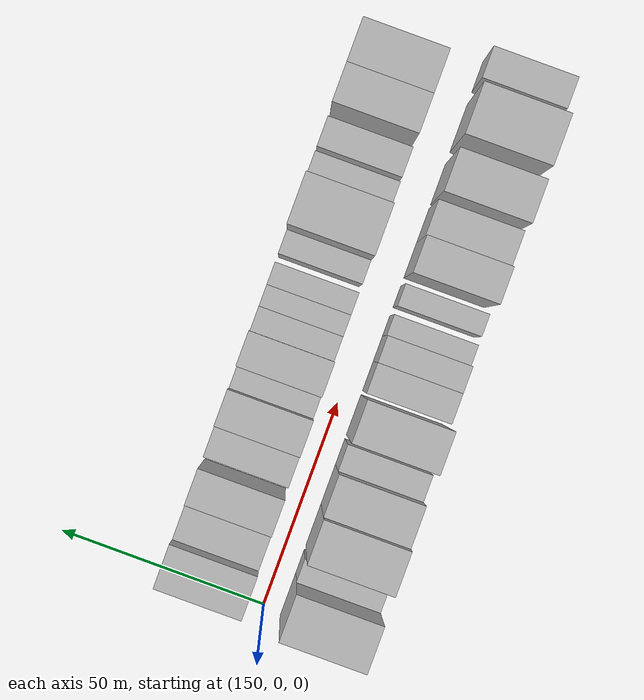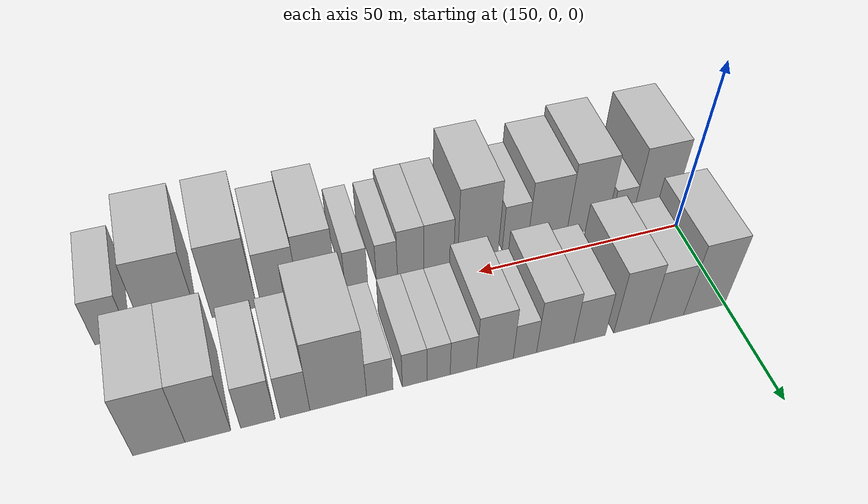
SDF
<sdf version="1.6">
 <world name="default">
  <model name="building_16">
   <static>1</static>
   <pose>155.3684 14.5000 0 0.000000 0.000000 1.570796</pose>
   <link name="link">
    <pose>0 0 12.00 0 0 0</pose>
    <collision name="collision"><geometry><box><size>20.0000 10.0553 24.0000</size></box></geometry></collision>
    <visual name="visual">
     <cast_shadows>0</cast_shadows>
     <geometry><box><size>20.0000 10.0553 24.0000</size></box></geometry>
     <material>
      <script>
       <uri>model://HANNAS_wall/materials/scripts</uri>
       <uri>model://HANNAS_wall/materials/textures</uri>
       <name>vrc/HANNAS_wall</name>
      </script>
     </material>
    </visual>
   </link>
  </model>
  <model name="building_17">
   <static>1</static>
   <pose>164.5696 14.5000 0 0.000000 0.000000 1.570796</pose>
   <link name="link">
    <pose>0 0 9.00 0 0 0</pose>
    <collision name="collision"><geometry><box><size>20.0000 8.3471 18.0000</size></box></geometry></collision>
    <visual name="visual">
     <cast_shadows>0</cast_shadows>
     <geometry><box><size>20.0000 8.3471 18.0000</size></box></geometry>
     <material>
      <script>
       <uri>model://HANNAS_wall/materials/scripts</uri>
       <uri>model://HANNAS_wall/materials/textures</uri>
       <name>vrc/HANNAS_wall</name>
      </script>
     </material>
    </visual>
   </link>
  </model>
  <model name="building_18">
   <static>1</static>
   <pose>172.9722 14.5000 0 0.000000 0.000000 1.570796</pose>
   <link name="link">
    <pose>0 0 10.50 0 0 0</pose>
    <collision name="collision"><geometry><box><size>20.0000 8.4581 21.0000</size></box></geometry></collision>
    <visual name="visual">
     <cast_shadows>0</cast_shadows>
     <geometry><box><size>20.0000 8.4581 21.0000</size></box></geometry>
     <material>
      <script>
       <uri>model://HANNAS_wall/materials/scripts</uri>
       <uri>model://HANNAS_wall/materials/textures</uri>
       <name>vrc/HANNAS_wall</name>
      </script>
     </material>
    </visual>
   </link>
  </model>
  <model name="building_19">
   <static>1</static>
   <pose>182.9234 14.5000 0 0.000000 0.000000 1.570796</pose>
   <link name="link">
    <pose>0 0 7.50 0 0 0</pose>
    <collision name="collision"><geometry><box><size>20.0000 7.4443 15.0000</size></box></geometry></collision>
    <visual name="visual">
     <cast_shadows>0</cast_shadows>
     <geometry><box><size>20.0000 7.4443 15.0000</size></box></geometry>
     <material>
      <script>
       <uri>model://HANNAS_wall/materials/scripts</uri>
       <uri>model://HANNAS_wall/materials/textures</uri>
       <name>vrc/HANNAS_wall</name>
      </script>
     </material>
    </visual>
   </link>
  </model>
  <model name="building_20">
   <static>1</static>
   <pose>190.9403 14.5000 0 0.000000 0.000000 1.570796</pose>
   <link name="link">
    <pose>0 0 9.00 0 0 0</pose>
    <collision name="collision"><geometry><box><size>20.0000 8.5895 18.0000</size></box></geometry></collision>
    <visual name="visual">
     <cast_shadows>0</cast_shadows>
     <geometry><box><size>20.0000 8.5895 18.0000</size></box></geometry>
     <material>
      <script>
       <uri>model://HANNAS_wall/materials/scripts</uri>
       <uri>model://HANNAS_wall/materials/textures</uri>
       <name>vrc/HANNAS_wall</name>
      </script>
     </material>
    </visual>
   </link>
  </model>
  <model name="building_21">
   <static>1</static>
   <pose>197.8930 14.5000 0 0.000000 0.000000 1.570796</pose>
   <link name="link">
    <pose>0 0 6.00 0 0 0</pose>
    <collision name="collision"><geometry><box><size>20.0000 5.3159 12.0000</size></box></geometry></collision>
    <visual name="visual">
     <cast_shadows>0</cast_shadows>
     <geometry><box><size>20.0000 5.3159 12.0000</size></box></geometry>
     <material>
      <script>
       <uri>model://HANNAS_wall/materials/scripts</uri>
       <uri>model://HANNAS_wall/materials/textures</uri>
       <name>vrc/HANNAS_wall</name>
      </script>
     </material>
    </visual>
   </link>
  </model>
  <model name="building_22">
   <static>1</static>
   <pose>204.6842 14.5000 0 0.000000 0.000000 1.570796</pose>
   <link name="link">
    <pose>0 0 9.00 0 0 0</pose>
    <collision name="collision"><geometry><box><size>20.0000 8.2665 18.0000</size></box></geometry></collision>
    <visual name="visual">
     <cast_shadows>0</cast_shadows>
     <geometry><box><size>20.0000 8.2665 18.0000</size></box></geometry>
     <material>
      <script>
       <uri>model://HANNAS_wall/materials/scripts</uri>
       <uri>model://HANNAS_wall/materials/textures</uri>
       <name>vrc/HANNAS_wall</name>
      </script>
     </material>
    </visual>
   </link>
  </model>
  <model name="building_23">
   <static>1</static>
   <pose>211.7679 14.5000 0 0.000000 0.000000 1.570796</pose>
   <link name="link">
    <pose>0 0 6.00 0 0 0</pose>
    <collision name="collision"><geometry><box><size>20.0000 5.9009 12.0000</size></box></geometry></collision>
    <visual name="visual">
     <cast_shadows>0</cast_shadows>
     <geometry><box><size>20.0000 5.9009 12.0000</size></box></geometry>
     <material>
      <script>
       <uri>model://HANNAS_wall/materials/scripts</uri>
       <uri>model://HANNAS_wall/materials/textures</uri>
       <name>vrc/HANNAS_wall</name>
      </script>
     </material>
    </visual>
   </link>
  </model>
  <model name="building_24">
   <static>1</static>
   <pose>217.2860 14.5000 0 0.000000 0.000000 1.570796</pose>
   <link name="link">
    <pose>0 0 6.00 0 0 0</pose>
    <collision name="collision"><geometry><box><size>20.0000 5.1353 12.0000</size></box></geometry></collision>
    <visual name="visual">
     <cast_shadows>0</cast_shadows>
     <geometry><box><size>20.0000 5.1353 12.0000</size></box></geometry>
     <material>
      <script>
       <uri>model://HANNAS_wall/materials/scripts</uri>
       <uri>model://HANNAS_wall/materials/textures</uri>
       <name>vrc/HANNAS_wall</name>
      </script>
     </material>
    </visual>
   </link>
  </model>
  <model name="building_25">
   <static>1</static>
   <pose>222.5215 14.5000 0 0.000000 0.000000 1.570796</pose>
   <link name="link">
    <pose>0 0 6.00 0 0 0</pose>
    <collision name="collision"><geometry><box><size>20.0000 5.3357 12.0000</size></box></geometry></collision>
    <visual name="visual">
     <cast_shadows>0</cast_shadows>
     <geometry><box><size>20.0000 5.3357 12.0000</size></box></geometry>
     <material>
      <script>
       <uri>model://HANNAS_wall/materials/scripts</uri>
       <uri>model://HANNAS_wall/materials/textures</uri>
       <name>vrc/HANNAS_wall</name>
      </script>
     </material>
    </visual>
   </link>
  </model>
  <model name="building_26">
   <static>1</static>
   <pose>230.0413 14.5000 0 0.000000 0.000000 1.570796</pose>
   <link name="link">
    <pose>0 0 6.00 0 0 0</pose>
    <collision name="collision"><geometry><box><size>20.0000 5.7038 12.0000</size></box></geometry></collision>
    <visual name="visual">
     <cast_shadows>0</cast_shadows>
     <geometry><box><size>20.0000 5.7038 12.0000</size></box></geometry>
     <material>
      <script>
       <uri>model://HANNAS_wall/materials/scripts</uri>
       <uri>model://HANNAS_wall/materials/textures</uri>
       <name>vrc/HANNAS_wall</name>
      </script>
     </material>
    </visual>
   </link>
  </model>
  <model name="building_27">
   <static>1</static>
   <pose>238.8898 14.5000 0 0.000000 0.000000 1.570796</pose>
   <link name="link">
    <pose>0 0 12.00 0 0 0</pose>
    <collision name="collision"><geometry><box><size>20.0000 11.9932 24.0000</size></box></geometry></collision>
    <visual name="visual">
     <cast_shadows>0</cast_shadows>
     <geometry><box><size>20.0000 11.9932 24.0000</size></box></geometry>
     <material>
      <script>
       <uri>model://HANNAS_wall/materials/scripts</uri>
       <uri>model://HANNAS_wall/materials/textures</uri>
       <name>vrc/HANNAS_wall</name>
      </script>
     </material>
    </visual>
   </link>
  </model>
  <model name="building_28">
   <static>1</static>
   <pose>247.9866 14.5000 0 0.000000 0.000000 1.570796</pose>
   <link name="link">
    <pose>0 0 7.50 0 0 0</pose>
    <collision name="collision"><geometry><box><size>20.0000 6.2003 15.0000</size></box></geometry></collision>
    <visual name="visual">
     <cast_shadows>0</cast_shadows>
     <geometry><box><size>20.0000 6.2003 15.0000</size></box></geometry>
     <material>
      <script>
       <uri>model://HANNAS_wall/materials/scripts</uri>
       <uri>model://HANNAS_wall/materials/textures</uri>
       <name>vrc/HANNAS_wall</name>
      </script>
     </material>
    </visual>
   </link>
  </model>
  <model name="building_29">
   <static>1</static>
   <pose>255.6470 14.5000 0 0.000000 0.000000 1.570796</pose>
   <link name="link">
    <pose>0 0 7.50 0 0 0</pose>
    <collision name="collision"><geometry><box><size>20.0000 7.1205 15.0000</size></box></geometry></collision>
    <visual name="visual">
     <cast_shadows>0</cast_shadows>
     <geometry><box><size>20.0000 7.1205 15.0000</size></box></geometry>
     <material>
      <script>
       <uri>model://HANNAS_wall/materials/scripts</uri>
       <uri>model://HANNAS_wall/materials/textures</uri>
       <name>vrc/HANNAS_wall</name>
      </script>
     </material>
    </visual>
   </link>
  </model>
  <model name="building_30">
   <static>1</static>
   <pose>265.8053 14.5000 0 0.000000 0.000000 1.570796</pose>
   <link name="link">
    <pose>0 0 10.50 0 0 0</pose>
    <collision name="collision"><geometry><box><size>20.0000 9.1960 21.0000</size></box></geometry></collision>
    <visual name="visual">
     <cast_shadows>0</cast_shadows>
     <geometry><box><size>20.0000 9.1960 21.0000</size></box></geometry>
     <material>
      <script>
       <uri>model://HANNAS_wall/materials/scripts</uri>
       <uri>model://HANNAS_wall/materials/textures</uri>
       <name>vrc/HANNAS_wall</name>
      </script>
     </material>
    </visual>
   </link>
  </model>
  <model name="building_31">
   <static>1</static>
   <pose>275.5494 14.5000 0 0.000000 0.000000 1.570796</pose>
   <link name="link">
    <pose>0 0 10.50 0 0 0</pose>
    <collision name="collision"><geometry><box><size>20.0000 10.2922 21.0000</size></box></geometry></collision>
    <visual name="visual">
     <cast_shadows>0</cast_shadows>
     <geometry><box><size>20.0000 10.2922 21.0000</size></box></geometry>
     <material>
      <script>
       <uri>model://HANNAS_wall/materials/scripts</uri>
       <uri>model://HANNAS_wall/materials/textures</uri>
       <name>vrc/HANNAS_wall</name>
      </script>
     </material>
    </visual>
   </link>
  </model>
  <model name="building_46">
   <static>1</static>
   <pose>154.2561 -14.5000 0 0.000000 0.000000 1.570796</pose>
   <link name="link">
    <pose>0 0 12.00 0 0 0</pose>
    <collision name="collision"><geometry><box><size>20.0000 10.8979 24.0000</size></box></geometry></collision>
    <visual name="visual">
     <cast_shadows>0</cast_shadows>
     <geometry><box><size>20.0000 10.8979 24.0000</size></box></geometry>
     <material>
      <script>
       <uri>model://HANNAS_wall/materials/scripts</uri>
       <uri>model://HANNAS_wall/materials/textures</uri>
       <name>vrc/HANNAS_wall</name>
      </script>
     </material>
    </visual>
   </link>
  </model>
  <model name="building_47">
   <static>1</static>
   <pose>162.4929 -14.5000 0 0.000000 0.000000 1.570796</pose>
   <link name="link">
    <pose>0 0 6.00 0 0 0</pose>
    <collision name="collision"><geometry><box><size>20.0000 5.5758 12.0000</size></box></geometry></collision>
    <visual name="visual">
     <cast_shadows>0</cast_shadows>
     <geometry><box><size>20.0000 5.5758 12.0000</size></box></geometry>
     <material>
      <script>
       <uri>model://HANNAS_wall/materials/scripts</uri>
       <uri>model://HANNAS_wall/materials/textures</uri>
       <name>vrc/HANNAS_wall</name>
      </script>
     </material>
    </visual>
   </link>
  </model>
  <model name="building_48">
   <static>1</static>
   <pose>171.4511 -14.5000 0 0.000000 0.000000 1.570796</pose>
   <link name="link">
    <pose>0 0 12.00 0 0 0</pose>
    <collision name="collision"><geometry><box><size>20.0000 10.3407 24.0000</size></box></geometry></collision>
    <visual name="visual">
     <cast_shadows>0</cast_shadows>
     <geometry><box><size>20.0000 10.3407 24.0000</size></box></geometry>
     <material>
      <script>
       <uri>model://HANNAS_wall/materials/scripts</uri>
       <uri>model://HANNAS_wall/materials/textures</uri>
       <name>vrc/HANNAS_wall</name>
      </script>
     </material>
    </visual>
   </link>
  </model>
  <model name="building_49">
   <static>1</static>
   <pose>181.5410 -14.5000 0 0.000000 0.000000 1.570796</pose>
   <link name="link">
    <pose>0 0 10.50 0 0 0</pose>
    <collision name="collision"><geometry><box><size>20.0000 9.8392 21.0000</size></box></geometry></collision>
    <visual name="visual">
     <cast_shadows>0</cast_shadows>
     <geometry><box><size>20.0000 9.8392 21.0000</size></box></geometry>
     <material>
      <script>
       <uri>model://HANNAS_wall/materials/scripts</uri>
       <uri>model://HANNAS_wall/materials/textures</uri>
       <name>vrc/HANNAS_wall</name>
      </script>
     </material>
    </visual>
   </link>
  </model>
  <model name="building_50">
   <static>1</static>
   <pose>189.6280 -14.5000 0 0.000000 0.000000 1.570796</pose>
   <link name="link">
    <pose>0 0 7.50 0 0 0</pose>
    <collision name="collision"><geometry><box><size>20.0000 6.3347 15.0000</size></box></geometry></collision>
    <visual name="visual">
     <cast_shadows>0</cast_shadows>
     <geometry><box><size>20.0000 6.3347 15.0000</size></box></geometry>
     <material>
      <script>
       <uri>model://HANNAS_wall/materials/scripts</uri>
       <uri>model://HANNAS_wall/materials/textures</uri>
       <name>vrc/HANNAS_wall</name>
      </script>
     </material>
    </visual>
   </link>
  </model>
  <model name="building_51">
   <static>1</static>
   <pose>198.7721 -14.5000 0 0.000000 0.000000 1.570796</pose>
   <link name="link">
    <pose>0 0 12.00 0 0 0</pose>
    <collision name="collision"><geometry><box><size>20.0000 9.9535 24.0000</size></box></geometry></collision>
    <visual name="visual">
     <cast_shadows>0</cast_shadows>
     <geometry><box><size>20.0000 9.9535 24.0000</size></box></geometry>
     <material>
      <script>
       <uri>model://HANNAS_wall/materials/scripts</uri>
       <uri>model://HANNAS_wall/materials/textures</uri>
       <name>vrc/HANNAS_wall</name>
      </script>
     </material>
    </visual>
   </link>
  </model>
  <model name="building_52">
   <static>1</static>
   <pose>208.3526 -14.5000 0 0.000000 0.000000 1.570796</pose>
   <link name="link">
    <pose>0 0 7.50 0 0 0</pose>
    <collision name="collision"><geometry><box><size>20.0000 7.2076 15.0000</size></box></geometry></collision>
    <visual name="visual">
     <cast_shadows>0</cast_shadows>
     <geometry><box><size>20.0000 7.2076 15.0000</size></box></geometry>
     <material>
      <script>
       <uri>model://HANNAS_wall/materials/scripts</uri>
       <uri>model://HANNAS_wall/materials/textures</uri>
       <name>vrc/HANNAS_wall</name>
      </script>
     </material>
    </visual>
   </link>
  </model>
  <model name="building_53">
   <static>1</static>
   <pose>215.1398 -14.5000 0 0.000000 0.000000 1.570796</pose>
   <link name="link">
    <pose>0 0 7.50 0 0 0</pose>
    <collision name="collision"><geometry><box><size>20.0000 6.3668 15.0000</size></box></geometry></collision>
    <visual name="visual">
     <cast_shadows>0</cast_shadows>
     <geometry><box><size>20.0000 6.3668 15.0000</size></box></geometry>
     <material>
      <script>
       <uri>model://HANNAS_wall/materials/scripts</uri>
       <uri>model://HANNAS_wall/materials/textures</uri>
       <name>vrc/HANNAS_wall</name>
      </script>
     </material>
    </visual>
   </link>
  </model>
  <model name="building_54">
   <static>1</static>
   <pose>220.8345 -14.5000 0 0.000000 0.000000 1.570796</pose>
   <link name="link">
    <pose>0 0 6.00 0 0 0</pose>
    <collision name="collision"><geometry><box><size>20.0000 5.0224 12.0000</size></box></geometry></collision>
    <visual name="visual">
     <cast_shadows>0</cast_shadows>
     <geometry><box><size>20.0000 5.0224 12.0000</size></box></geometry>
     <material>
      <script>
       <uri>model://HANNAS_wall/materials/scripts</uri>
       <uri>model://HANNAS_wall/materials/textures</uri>
       <name>vrc/HANNAS_wall</name>
      </script>
     </material>
    </visual>
   </link>
  </model>
  <model name="building_55">
   <static>1</static>
   <pose>228.0047 -14.5000 0 0.000000 0.000000 1.570796</pose>
   <link name="link">
    <pose>0 0 6.00 0 0 0</pose>
    <collision name="collision"><geometry><box><size>20.0000 5.3181 12.0000</size></box></geometry></collision>
    <visual name="visual">
     <cast_shadows>0</cast_shadows>
     <geometry><box><size>20.0000 5.3181 12.0000</size></box></geometry>
     <material>
      <script>
       <uri>model://HANNAS_wall/materials/scripts</uri>
       <uri>model://HANNAS_wall/materials/textures</uri>
       <name>vrc/HANNAS_wall</name>
      </script>
     </material>
    </visual>
   </link>
  </model>
  <model name="building_56">
   <static>1</static>
   <pose>237.0008 -14.5000 0 0.000000 0.000000 1.570796</pose>
   <link name="link">
    <pose>0 0 10.50 0 0 0</pose>
    <collision name="collision"><geometry><box><size>20.0000 8.6741 21.0000</size></box></geometry></collision>
    <visual name="visual">
     <cast_shadows>0</cast_shadows>
     <geometry><box><size>20.0000 8.6741 21.0000</size></box></geometry>
     <material>
      <script>
       <uri>model://HANNAS_wall/materials/scripts</uri>
       <uri>model://HANNAS_wall/materials/textures</uri>
       <name>vrc/HANNAS_wall</name>
      </script>
     </material>
    </visual>
   </link>
  </model>
  <model name="building_57">
   <static>1</static>
   <pose>245.6069 -14.5000 0 0.000000 0.000000 1.570796</pose>
   <link name="link">
    <pose>0 0 9.00 0 0 0</pose>
    <collision name="collision"><geometry><box><size>20.0000 8.5382 18.0000</size></box></geometry></collision>
    <visual name="visual">
     <cast_shadows>0</cast_shadows>
     <geometry><box><size>20.0000 8.5382 18.0000</size></box></geometry>
     <material>
      <script>
       <uri>model://HANNAS_wall/materials/scripts</uri>
       <uri>model://HANNAS_wall/materials/textures</uri>
       <name>vrc/HANNAS_wall</name>
      </script>
     </material>
    </visual>
   </link>
  </model>
  <model name="building_58">
   <static>1</static>
   <pose>255.8739 -14.5000 0 0.000000 0.000000 1.570796</pose>
   <link name="link">
    <pose>0 0 12.00 0 0 0</pose>
    <collision name="collision"><geometry><box><size>20.0000 9.9957 24.0000</size></box></geometry></collision>
    <visual name="visual">
     <cast_shadows>0</cast_shadows>
     <geometry><box><size>20.0000 9.9957 24.0000</size></box></geometry>
     <material>
      <script>
       <uri>model://HANNAS_wall/materials/scripts</uri>
       <uri>model://HANNAS_wall/materials/textures</uri>
       <name>vrc/HANNAS_wall</name>
      </script>
     </material>
    </visual>
   </link>
  </model>
  <model name="building_59">
   <static>1</static>
   <pose>269.8247 -14.5000 0 0.000000 0.000000 1.570796</pose>
   <link name="link">
    <pose>0 0 12.00 0 0 0</pose>
    <collision name="collision"><geometry><box><size>20.0000 11.9060 24.0000</size></box></geometry></collision>
    <visual name="visual">
     <cast_shadows>0</cast_shadows>
     <geometry><box><size>20.0000 11.9060 24.0000</size></box></geometry>
     <material>
      <script>
       <uri>model://HANNAS_wall/materials/scripts</uri>
       <uri>model://HANNAS_wall/materials/textures</uri>
       <name>vrc/HANNAS_wall</name>
      </script>
     </material>
    </visual>
   </link>
  </model>
  <model name="building_60">
   <static>1</static>
   <pose>282.5133 -14.5000 0 0.000000 0.000000 1.570796</pose>
   <link name="link">
    <pose>0 0 7.50 0 0 0</pose>
    <collision name="collision"><geometry><box><size>20.0000 7.4712 15.0000</size></box></geometry></collision>
    <visual name="visual">
     <cast_shadows>0</cast_shadows>
     <geometry><box><size>20.0000 7.4712 15.0000</size></box></geometry>
     <material>
      <script>
       <uri>model://HANNAS_wall/materials/scripts</uri>
       <uri>model://HANNAS_wall/materials/textures</uri>
       <name>vrc/HANNAS_wall</name>
      </script>
     </material>
    </visual>
   </link>
  </model>
 </world>
</sdf>
